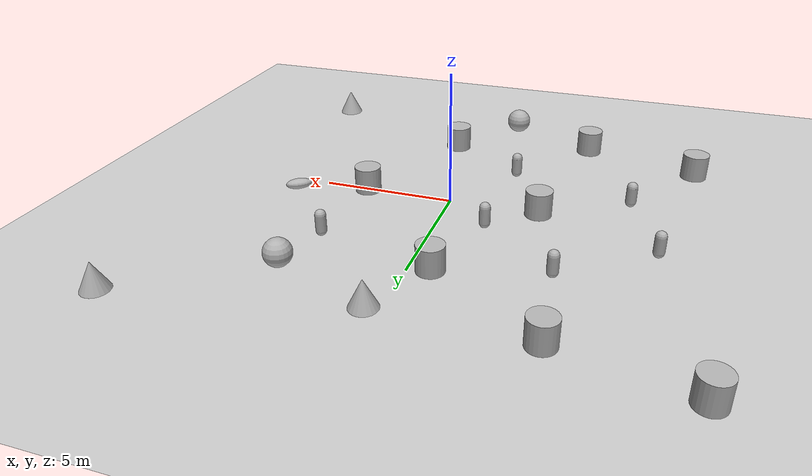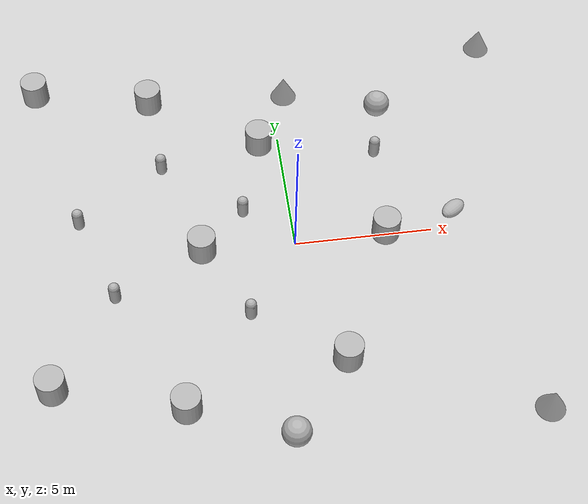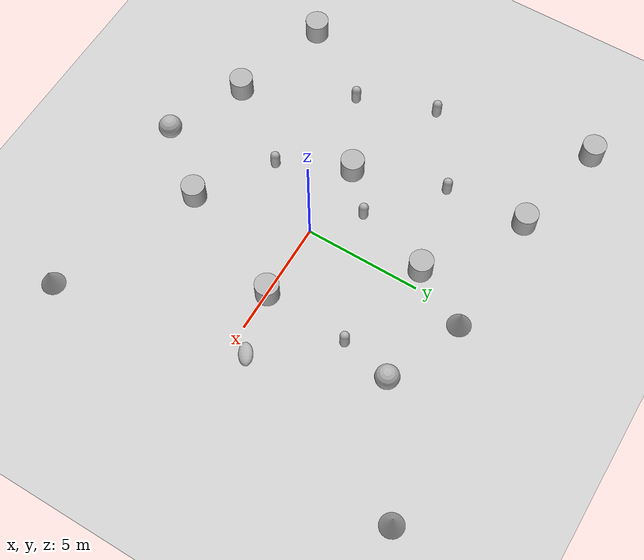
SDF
<sdf version='1.10'>
  <world name='default'>
    <physics name='sim_physics' type='ode'>
      <max_step_size>0.001</max_step_size>
      <real_time_factor>1</real_time_factor>
      <real_time_update_rate>1000</real_time_update_rate>
      <ode>
        <solver>
          <type>world</type>
          <iters>150</iters>
          <sor>1.3</sor>
          <use_dynamic_moi_rescaling>true</use_dynamic_moi_rescaling>
        </solver>
        <constraints>
          <cfm>0</cfm>
          <erp>0.20000000000000001</erp>
          <contact_max_correcting_vel>100</contact_max_correcting_vel>
          <contact_surface_layer>0.001</contact_surface_layer>
        </constraints>
      </ode>
    </physics>
    <scene>
      <ambient>0.400000006 0.400000006 0.400000006 1</ambient>
      <background>0.699999988 0.699999988 0.699999988 1</background>
      <shadows>true</shadows>
    </scene>
    <gravity>0 0 -9.8000000000000007</gravity>
    <magnetic_field>5.5644999999999998e-06 2.2875799999999999e-05 -4.2388400000000002e-05</magnetic_field>
    <atmosphere type='adiabatic'/>
    <model name='ground_plane'>
      <static>true</static>
      <link name='link'>
        <collision name='collision'>
          <geometry>
            <plane>
              <normal>0 0 1</normal>
              <size>100 100</size>
            </plane>
          </geometry>
          <surface>
            <friction>
              <ode>
                <mu>100</mu>
                <mu2>50</mu2>
              </ode>
            </friction>
            <contact>
              <ode>
                <kp>1000000</kp>
                <kd>1</kd>
              </ode>
            </contact>
            <bounce/>
          </surface>
        </collision>
        <visual name='visual'>
          <geometry>
            <plane>
              <normal>0 0 1</normal>
              <size>100 100</size>
            </plane>
          </geometry>
          <material>
            <ambient>0.800000012 0.800000012 0.800000012 1</ambient>
            <diffuse>0.800000012 0.800000012 0.800000012 1</diffuse>
            <specular>0.800000012 0.800000012 0.800000012 1</specular>
          </material>
        </visual>
        <pose>0 0 0 0 0 0</pose>
        <inertial>
          <pose>0 0 0 0 0 0</pose>
          <mass>1</mass>
          <inertia>
            <ixx>1</ixx>
            <ixy>0</ixy>
            <ixz>0</ixz>
            <iyy>1</iyy>
            <iyz>0</iyz>
            <izz>1</izz>
          </inertia>
        </inertial>
        <enable_wind>false</enable_wind>
      </link>
      <pose>0 0 0 0 0 0</pose>
      <self_collide>false</self_collide>
    </model>
    <model name='cylinder'>
      <pose>3.3054241307502163 0.043477416391058503 0.49999942638036005 4.1262285443323388e-19 -2.5661457691216245e-19 1.3792220042789841e-21</pose>
      <link name='cylinder_link'>
        <inertial>
          <inertia>
            <ixx>0.14580000000000001</ixx>
            <ixy>0</ixy>
            <ixz>0</ixz>
            <iyy>0.14580000000000001</iyy>
            <iyz>0</iyz>
            <izz>0.125</izz>
          </inertia>
          <mass>1</mass>
          <pose>0 0 0 0 0 0</pose>
        </inertial>
        <collision name='cylinder_collision'>
          <geometry>
            <cylinder>
              <radius>0.5</radius>
              <length>1</length>
            </cylinder>
          </geometry>
          <surface>
            <friction>
              <ode/>
            </friction>
            <bounce/>
            <contact/>
          </surface>
        </collision>
        <visual name='cylinder_visual'>
          <geometry>
            <cylinder>
              <radius>0.5</radius>
              <length>1</length>
            </cylinder>
          </geometry>
          <material>
            <ambient>0.300000012 0.300000012 0.300000012 1</ambient>
            <diffuse>0.699999988 0.699999988 0.699999988 1</diffuse>
            <specular>1 1 1 1</specular>
          </material>
        </visual>
        <pose>0 0 0 0 0 0</pose>
        <enable_wind>false</enable_wind>
      </link>
      <static>false</static>
      <self_collide>false</self_collide>
    </model>
    <model name='cylinder_0'>
      <pose>-3.3755703132700692 0.04078806777754438 0.49999942638036005 3.5519531972500483e-19 -3.6751912412000469e-19 1.7472083759828068e-20</pose>
      <link name='cylinder_link'>
        <inertial>
          <inertia>
            <ixx>0.14580000000000001</ixx>
            <ixy>0</ixy>
            <ixz>0</ixz>
            <iyy>0.14580000000000001</iyy>
            <iyz>0</iyz>
            <izz>0.125</izz>
          </inertia>
          <mass>1</mass>
          <pose>0 0 0 0 0 0</pose>
        </inertial>
        <collision name='cylinder_collision'>
          <geometry>
            <cylinder>
              <radius>0.5</radius>
              <length>1</length>
            </cylinder>
          </geometry>
          <surface>
            <friction>
              <ode/>
            </friction>
            <bounce/>
            <contact/>
          </surface>
        </collision>
        <visual name='cylinder_visual'>
          <geometry>
            <cylinder>
              <radius>0.5</radius>
              <length>1</length>
            </cylinder>
          </geometry>
          <material>
            <ambient>0.300000012 0.300000012 0.300000012 1</ambient>
            <diffuse>0.699999988 0.699999988 0.699999988 1</diffuse>
            <specular>1 1 1 1</specular>
          </material>
        </visual>
        <pose>0 0 0 0 0 0</pose>
        <enable_wind>false</enable_wind>
      </link>
      <static>false</static>
      <self_collide>false</self_collide>
    </model>
    <model name='cylinder_1'>
      <pose>-0.75868858733818101 4.7686502744917227 0.49999942638036005 -1.3715650340256762e-19 -1.7463411362436129e-19 -1.746022263645055e-21</pose>
      <link name='cylinder_link'>
        <inertial>
          <inertia>
            <ixx>0.14580000000000001</ixx>
            <ixy>0</ixy>
            <ixz>0</ixz>
            <iyy>0.14580000000000001</iyy>
            <iyz>0</iyz>
            <izz>0.125</izz>
          </inertia>
          <mass>1</mass>
          <pose>0 0 0 0 0 0</pose>
        </inertial>
        <collision name='cylinder_collision'>
          <geometry>
            <cylinder>
              <radius>0.5</radius>
              <length>1</length>
            </cylinder>
          </geometry>
          <surface>
            <friction>
              <ode/>
            </friction>
            <bounce/>
            <contact/>
          </surface>
        </collision>
        <visual name='cylinder_visual'>
          <geometry>
            <cylinder>
              <radius>0.5</radius>
              <length>1</length>
            </cylinder>
          </geometry>
          <material>
            <ambient>0.300000012 0.300000012 0.300000012 1</ambient>
            <diffuse>0.699999988 0.699999988 0.699999988 1</diffuse>
            <specular>1 1 1 1</specular>
          </material>
        </visual>
        <pose>0 0 0 0 0 0</pose>
        <enable_wind>false</enable_wind>
      </link>
      <static>false</static>
      <self_collide>false</self_collide>
    </model>
    <model name='cylinder_2'>
      <pose>1.0676879775667754 -4.9688163409546116 0.49999942638036005 -6.4243685146407588e-20 2.239126339818348e-19 4.7188370077248854e-21</pose>
      <link name='cylinder_link'>
        <inertial>
          <inertia>
            <ixx>0.14580000000000001</ixx>
            <ixy>0</ixy>
            <ixz>0</ixz>
            <iyy>0.14580000000000001</iyy>
            <iyz>0</iyz>
            <izz>0.125</izz>
          </inertia>
          <mass>1</mass>
          <pose>0 0 0 0 0 0</pose>
        </inertial>
        <collision name='cylinder_collision'>
          <geometry>
            <cylinder>
              <radius>0.5</radius>
              <length>1</length>
            </cylinder>
          </geometry>
          <surface>
            <friction>
              <ode/>
            </friction>
            <bounce/>
            <contact/>
          </surface>
        </collision>
        <visual name='cylinder_visual'>
          <geometry>
            <cylinder>
              <radius>0.5</radius>
              <length>1</length>
            </cylinder>
          </geometry>
          <material>
            <ambient>0.300000012 0.300000012 0.300000012 1</ambient>
            <diffuse>0.699999988 0.699999988 0.699999988 1</diffuse>
            <specular>1 1 1 1</specular>
          </material>
        </visual>
        <pose>0 0 0 0 0 0</pose>
        <enable_wind>false</enable_wind>
      </link>
      <static>false</static>
      <self_collide>false</self_collide>
    </model>
    <model name='capsule'>
      <pose>3.5494327944988093 3.7673195639465566 0.499999999902001 0 0 0</pose>
      <link name='capsule_link'>
        <inertial>
          <inertia>
            <ixx>0.074153999999999998</ixx>
            <ixy>0</ixy>
            <ixz>0</ixz>
            <iyy>0.074153999999999998</iyy>
            <iyz>0</iyz>
            <izz>0.018769000000000001</izz>
          </inertia>
          <mass>1</mass>
          <pose>0 0 0 0 0 0</pose>
        </inertial>
        <collision name='capsule_collision'>
          <geometry>
            <capsule>
              <radius>0.20000000000000001</radius>
              <length>0.59999999999999998</length>
            </capsule>
          </geometry>
          <surface>
            <friction>
              <ode/>
            </friction>
            <bounce/>
            <contact/>
          </surface>
        </collision>
        <visual name='capsule_visual'>
          <geometry>
            <capsule>
              <radius>0.20000000000000001</radius>
              <length>0.59999999999999998</length>
            </capsule>
          </geometry>
          <material>
            <ambient>0.300000012 0.300000012 0.300000012 1</ambient>
            <diffuse>0.699999988 0.699999988 0.699999988 1</diffuse>
            <specular>1 1 1 1</specular>
          </material>
        </visual>
        <pose>0 0 0 0 0 0</pose>
        <enable_wind>false</enable_wind>
      </link>
      <static>false</static>
      <self_collide>false</self_collide>
    </model>
    <model name='capsule_0'>
      <pose>-1.7328686774415232 1.5381252946917658 0.499999999902001 0 0 0</pose>
      <link name='capsule_link'>
        <inertial>
          <inertia>
            <ixx>0.074153999999999998</ixx>
            <ixy>0</ixy>
            <ixz>0</ixz>
            <iyy>0.074153999999999998</iyy>
            <iyz>0</iyz>
            <izz>0.018769000000000001</izz>
          </inertia>
          <mass>1</mass>
          <pose>0 0 0 0 0 0</pose>
        </inertial>
        <collision name='capsule_collision'>
          <geometry>
            <capsule>
              <radius>0.20000000000000001</radius>
              <length>0.59999999999999998</length>
            </capsule>
          </geometry>
          <surface>
            <friction>
              <ode/>
            </friction>
            <bounce/>
            <contact/>
          </surface>
        </collision>
        <visual name='capsule_visual'>
          <geometry>
            <capsule>
              <radius>0.20000000000000001</radius>
              <length>0.59999999999999998</length>
            </capsule>
          </geometry>
          <material>
            <ambient>0.300000012 0.300000012 0.300000012 1</ambient>
            <diffuse>0.699999988 0.699999988 0.699999988 1</diffuse>
            <specular>1 1 1 1</specular>
          </material>
        </visual>
        <pose>0 0 0 0 0 0</pose>
        <enable_wind>false</enable_wind>
      </link>
      <static>false</static>
      <self_collide>false</self_collide>
    </model>
    <model name='capsule_1'>
      <pose>-1.9563872378600475 -2.8839411133687896 0.499999999902001 0 0 0</pose>
      <link name='capsule_link'>
        <inertial>
          <inertia>
            <ixx>0.074153999999999998</ixx>
            <ixy>0</ixy>
            <ixz>0</ixz>
            <iyy>0.074153999999999998</iyy>
            <iyz>0</iyz>
            <izz>0.018769000000000001</izz>
          </inertia>
          <mass>1</mass>
          <pose>0 0 0 0 0 0</pose>
        </inertial>
        <collision name='capsule_collision'>
          <geometry>
            <capsule>
              <radius>0.20000000000000001</radius>
              <length>0.59999999999999998</length>
            </capsule>
          </geometry>
          <surface>
            <friction>
              <ode/>
            </friction>
            <bounce/>
            <contact/>
          </surface>
        </collision>
        <visual name='capsule_visual'>
          <geometry>
            <capsule>
              <radius>0.20000000000000001</radius>
              <length>0.59999999999999998</length>
            </capsule>
          </geometry>
          <material>
            <ambient>0.300000012 0.300000012 0.300000012 1</ambient>
            <diffuse>0.699999988 0.699999988 0.699999988 1</diffuse>
            <specular>1 1 1 1</specular>
          </material>
        </visual>
        <pose>0 0 0 0 0 0</pose>
        <enable_wind>false</enable_wind>
      </link>
      <static>false</static>
      <self_collide>false</self_collide>
    </model>
    <model name='sphere'>
      <pose>4.0390578974163756 5.9560535821564766 0.499999999902001 0 0 0</pose>
      <link name='sphere_link'>
        <inertial>
          <inertia>
            <ixx>0.10000000000000001</ixx>
            <ixy>0</ixy>
            <ixz>0</ixz>
            <iyy>0.10000000000000001</iyy>
            <iyz>0</iyz>
            <izz>0.10000000000000001</izz>
          </inertia>
          <mass>1</mass>
          <pose>0 0 0 0 0 0</pose>
        </inertial>
        <collision name='sphere_collision'>
          <geometry>
            <sphere>
              <radius>0.5</radius>
            </sphere>
          </geometry>
          <surface>
            <friction>
              <ode/>
            </friction>
            <bounce/>
            <contact/>
          </surface>
        </collision>
        <visual name='sphere_visual'>
          <geometry>
            <sphere>
              <radius>0.5</radius>
            </sphere>
          </geometry>
          <material>
            <ambient>0.300000012 0.300000012 0.300000012 1</ambient>
            <diffuse>0.699999988 0.699999988 0.699999988 1</diffuse>
            <specular>1 1 1 1</specular>
          </material>
        </visual>
        <pose>0 0 0 0 0 0</pose>
        <enable_wind>false</enable_wind>
      </link>
      <static>false</static>
      <self_collide>false</self_collide>
    </model>
    <model name='ellipsoid'>
      <pose>5.958588839394003 0.72623047748717851 0.18666847899453123 1.5707963183065554 -1.3774902892568108 -0.96931484860252959</pose>
      <link name='ellipsoid_link'>
        <inertial>
          <inertia>
            <ixx>0.068000000000000005</ixx>
            <ixy>0</ixy>
            <ixz>0</ixz>
            <iyy>0.058000000000000003</iyy>
            <iyz>0</iyz>
            <izz>0.025999999999999999</izz>
          </inertia>
          <mass>1</mass>
          <pose>0 0 0 0 0 0</pose>
        </inertial>
        <collision name='ellipsoid_collision'>
          <geometry>
            <ellipsoid>
              <radii>0.20000000000000001 0.29999999999999999 0.5</radii>
            </ellipsoid>
          </geometry>
          <surface>
            <friction>
              <ode/>
            </friction>
            <bounce/>
            <contact/>
          </surface>
        </collision>
        <visual name='ellipsoid_visual'>
          <geometry>
            <ellipsoid>
              <radii>0.20000000000000001 0.29999999999999999 0.5</radii>
            </ellipsoid>
          </geometry>
          <material>
            <ambient>0.300000012 0.300000012 0.300000012 1</ambient>
            <diffuse>0.699999988 0.699999988 0.699999988 1</diffuse>
            <specular>1 1 1 1</specular>
          </material>
        </visual>
        <pose>0 0 0 0 0 0</pose>
        <enable_wind>false</enable_wind>
      </link>
      <static>false</static>
      <self_collide>false</self_collide>
    </model>
    <model name='capsule_2'>
      <pose>-4.5474529115312974 3.9266357548779158 0.499999999902001 0 0 0</pose>
      <link name='capsule_link'>
        <inertial>
          <inertia>
            <ixx>0.074153999999999998</ixx>
            <ixy>0</ixy>
            <ixz>0</ixz>
            <iyy>0.074153999999999998</iyy>
            <iyz>0</iyz>
            <izz>0.018769000000000001</izz>
          </inertia>
          <mass>1</mass>
          <pose>0 0 0 0 0 0</pose>
        </inertial>
        <collision name='capsule_collision'>
          <geometry>
            <capsule>
              <radius>0.20000000000000001</radius>
              <length>0.59999999999999998</length>
            </capsule>
          </geometry>
          <surface>
            <friction>
              <ode/>
            </friction>
            <bounce/>
            <contact/>
          </surface>
        </collision>
        <visual name='capsule_visual'>
          <geometry>
            <capsule>
              <radius>0.20000000000000001</radius>
              <length>0.59999999999999998</length>
            </capsule>
          </geometry>
          <material>
            <ambient>0.300000012 0.300000012 0.300000012 1</ambient>
            <diffuse>0.699999988 0.699999988 0.699999988 1</diffuse>
            <specular>1 1 1 1</specular>
          </material>
        </visual>
        <pose>0 0 0 0 0 0</pose>
        <enable_wind>false</enable_wind>
      </link>
      <static>false</static>
      <self_collide>false</self_collide>
    </model>
    <model name='cone'>
      <pose>0.53497423170638259 7.2409155408666823 0.49999999993296756 5.2548544155140844e-17 -7.7132841038066057e-10 -1.848369177196814e-23</pose>
      <link name='cone_link'>
        <inertial>
          <inertia>
            <ixx>0.074999999999999997</ixx>
            <ixy>0</ixy>
            <ixz>0</ixz>
            <iyy>0.074999999999999997</iyy>
            <iyz>0</iyz>
            <izz>0.074999999999999997</izz>
          </inertia>
          <mass>1</mass>
          <pose>0 0 0 0 0 0</pose>
        </inertial>
        <collision name='cone_collision'>
          <geometry>
            <cone>
              <radius>0.5</radius>
              <length>1</length>
            </cone>
          </geometry>
          <surface>
            <friction>
              <ode/>
            </friction>
            <bounce/>
            <contact/>
          </surface>
        </collision>
        <visual name='cone_visual'>
          <geometry>
            <cone>
              <radius>0.5</radius>
              <length>1</length>
            </cone>
          </geometry>
          <material>
            <ambient>0.300000012 0.300000012 0.300000012 1</ambient>
            <diffuse>0.699999988 0.699999988 0.699999988 1</diffuse>
            <specular>1 1 1 1</specular>
          </material>
        </visual>
        <pose>0 0 0 0 0 0</pose>
        <enable_wind>false</enable_wind>
      </link>
      <static>false</static>
      <self_collide>false</self_collide>
    </model>
    <model name='cone_0'>
      <pose>7.3235197849398883 -7.5969464660867416 0.49999999993296756 5.2548544155140844e-17 -7.7132841038066057e-10 -1.848369177196814e-23</pose>
      <link name='cone_link'>
        <inertial>
          <inertia>
            <ixx>0.074999999999999997</ixx>
            <ixy>0</ixy>
            <ixz>0</ixz>
            <iyy>0.074999999999999997</iyy>
            <iyz>0</iyz>
            <izz>0.074999999999999997</izz>
          </inertia>
          <mass>1</mass>
          <pose>0 0 0 0 0 0</pose>
        </inertial>
        <collision name='cone_collision'>
          <geometry>
            <cone>
              <radius>0.5</radius>
              <length>1</length>
            </cone>
          </geometry>
          <surface>
            <friction>
              <ode/>
            </friction>
            <bounce/>
            <contact/>
          </surface>
        </collision>
        <visual name='cone_visual'>
          <geometry>
            <cone>
              <radius>0.5</radius>
              <length>1</length>
            </cone>
          </geometry>
          <material>
            <ambient>0.300000012 0.300000012 0.300000012 1</ambient>
            <diffuse>0.699999988 0.699999988 0.699999988 1</diffuse>
            <specular>1 1 1 1</specular>
          </material>
        </visual>
        <pose>0 0 0 0 0 0</pose>
        <enable_wind>false</enable_wind>
      </link>
      <static>false</static>
      <self_collide>false</self_collide>
    </model>
    <model name='cone_1'>
      <pose>8.7916799813517574 8.8859953919287591 0.49999999993296756 5.254931119316858e-17 -7.7132841033999823e-10 6.969765996526587e-23</pose>
      <link name='cone_link'>
        <inertial>
          <inertia>
            <ixx>0.074999999999999997</ixx>
            <ixy>0</ixy>
            <ixz>0</ixz>
            <iyy>0.074999999999999997</iyy>
            <iyz>0</iyz>
            <izz>0.074999999999999997</izz>
          </inertia>
          <mass>1</mass>
          <pose>0 0 0 0 0 0</pose>
        </inertial>
        <collision name='cone_collision'>
          <geometry>
            <cone>
              <radius>0.5</radius>
              <length>1</length>
            </cone>
          </geometry>
          <surface>
            <friction>
              <ode/>
            </friction>
            <bounce/>
            <contact/>
          </surface>
        </collision>
        <visual name='cone_visual'>
          <geometry>
            <cone>
              <radius>0.5</radius>
              <length>1</length>
            </cone>
          </geometry>
          <material>
            <ambient>0.300000012 0.300000012 0.300000012 1</ambient>
            <diffuse>0.699999988 0.699999988 0.699999988 1</diffuse>
            <specular>1 1 1 1</specular>
          </material>
        </visual>
        <pose>0 0 0 0 0 0</pose>
        <enable_wind>false</enable_wind>
      </link>
      <static>false</static>
      <self_collide>false</self_collide>
    </model>
    <model name='cylinder_3'>
      <pose>-4.8224049646347247 7.3952940584726514 0.49999942638036005 -1.9945543750434458e-19 -5.6710803264491748e-19 3.0591398850776577e-20</pose>
      <link name='cylinder_link'>
        <inertial>
          <inertia>
            <ixx>0.14580000000000001</ixx>
            <ixy>0</ixy>
            <ixz>0</ixz>
            <iyy>0.14580000000000001</iyy>
            <iyz>0</iyz>
            <izz>0.125</izz>
          </inertia>
          <mass>1</mass>
          <pose>0 0 0 0 0 0</pose>
        </inertial>
        <collision name='cylinder_collision'>
          <geometry>
            <cylinder>
              <radius>0.5</radius>
              <length>1</length>
            </cylinder>
          </geometry>
          <surface>
            <friction>
              <ode/>
            </friction>
            <bounce/>
            <contact/>
          </surface>
        </collision>
        <visual name='cylinder_visual'>
          <geometry>
            <cylinder>
              <radius>0.5</radius>
              <length>1</length>
            </cylinder>
          </geometry>
          <material>
            <ambient>0.300000012 0.300000012 0.300000012 1</ambient>
            <diffuse>0.699999988 0.699999988 0.699999988 1</diffuse>
            <specular>1 1 1 1</specular>
          </material>
        </visual>
        <pose>0 0 0 0 0 0</pose>
        <enable_wind>false</enable_wind>
      </link>
      <static>false</static>
      <self_collide>false</self_collide>
    </model>
    <model name='cylinder_4'>
      <pose>-4.4475259608033175 -6.1901208556547864 0.49999942638036005 -2.0996670157040641e-19 -3.2586016569478845e-19 -6.1134979538675135e-21</pose>
      <link name='cylinder_link'>
        <inertial>
          <inertia>
            <ixx>0.14580000000000001</ixx>
            <ixy>0</ixy>
            <ixz>0</ixz>
            <iyy>0.14580000000000001</iyy>
            <iyz>0</iyz>
            <izz>0.125</izz>
          </inertia>
          <mass>1</mass>
          <pose>0 0 0 0 0 0</pose>
        </inertial>
        <collision name='cylinder_collision'>
          <geometry>
            <cylinder>
              <radius>0.5</radius>
              <length>1</length>
            </cylinder>
          </geometry>
          <surface>
            <friction>
              <ode/>
            </friction>
            <bounce/>
            <contact/>
          </surface>
        </collision>
        <visual name='cylinder_visual'>
          <geometry>
            <cylinder>
              <radius>0.5</radius>
              <length>1</length>
            </cylinder>
          </geometry>
          <material>
            <ambient>0.300000012 0.300000012 0.300000012 1</ambient>
            <diffuse>0.699999988 0.699999988 0.699999988 1</diffuse>
            <specular>1 1 1 1</specular>
          </material>
        </visual>
        <pose>0 0 0 0 0 0</pose>
        <enable_wind>false</enable_wind>
      </link>
      <static>false</static>
      <self_collide>false</self_collide>
    </model>
    <model name='capsule_3'>
      <pose>-7.7090402851267266 1.7119971146969017 0.499999999902001 0 0 0</pose>
      <link name='capsule_link'>
        <inertial>
          <inertia>
            <ixx>0.074153999999999998</ixx>
            <ixy>0</ixy>
            <ixz>0</ixz>
            <iyy>0.074153999999999998</iyy>
            <iyz>0</iyz>
            <izz>0.018769000000000001</izz>
          </inertia>
          <mass>1</mass>
          <pose>0 0 0 0 0 0</pose>
        </inertial>
        <collision name='capsule_collision'>
          <geometry>
            <capsule>
              <radius>0.20000000000000001</radius>
              <length>0.59999999999999998</length>
            </capsule>
          </geometry>
          <surface>
            <friction>
              <ode/>
            </friction>
            <bounce/>
            <contact/>
          </surface>
        </collision>
        <visual name='capsule_visual'>
          <geometry>
            <capsule>
              <radius>0.20000000000000001</radius>
              <length>0.59999999999999998</length>
            </capsule>
          </geometry>
          <material>
            <ambient>0.300000012 0.300000012 0.300000012 1</ambient>
            <diffuse>0.699999988 0.699999988 0.699999988 1</diffuse>
            <specular>1 1 1 1</specular>
          </material>
        </visual>
        <pose>0 0 0 0 0 0</pose>
        <enable_wind>false</enable_wind>
      </link>
      <static>false</static>
      <self_collide>false</self_collide>
    </model>
    <model name='cylinder_5'>
      <pose>-9.2313804520919369 8.3635850195794195 0.49999942638036005 1.5441689325479654e-19 3.3018878921726261e-19 -8.627297386163477e-21</pose>
      <link name='cylinder_link'>
        <inertial>
          <inertia>
            <ixx>0.14580000000000001</ixx>
            <ixy>0</ixy>
            <ixz>0</ixz>
            <iyy>0.14580000000000001</iyy>
            <iyz>0</iyz>
            <izz>0.125</izz>
          </inertia>
          <mass>1</mass>
          <pose>0 0 0 0 0 0</pose>
        </inertial>
        <collision name='cylinder_collision'>
          <geometry>
            <cylinder>
              <radius>0.5</radius>
              <length>1</length>
            </cylinder>
          </geometry>
          <surface>
            <friction>
              <ode/>
            </friction>
            <bounce/>
            <contact/>
          </surface>
        </collision>
        <visual name='cylinder_visual'>
          <geometry>
            <cylinder>
              <radius>0.5</radius>
              <length>1</length>
            </cylinder>
          </geometry>
          <material>
            <ambient>0.300000012 0.300000012 0.300000012 1</ambient>
            <diffuse>0.699999988 0.699999988 0.699999988 1</diffuse>
            <specular>1 1 1 1</specular>
          </material>
        </visual>
        <pose>0 0 0 0 0 0</pose>
        <enable_wind>false</enable_wind>
      </link>
      <static>false</static>
      <self_collide>false</self_collide>
    </model>
    <model name='cylinder_6'>
      <pose>-8.7784591240114143 -4.9768766419000725 0.49999942638036005 -1.1957274550866602e-19 2.1817599206210081e-19 -2.9473679563631457e-21</pose>
      <link name='cylinder_link'>
        <inertial>
          <inertia>
            <ixx>0.14580000000000001</ixx>
            <ixy>0</ixy>
            <ixz>0</ixz>
            <iyy>0.14580000000000001</iyy>
            <iyz>0</iyz>
            <izz>0.125</izz>
          </inertia>
          <mass>1</mass>
          <pose>0 0 0 0 0 0</pose>
        </inertial>
        <collision name='cylinder_collision'>
          <geometry>
            <cylinder>
              <radius>0.5</radius>
              <length>1</length>
            </cylinder>
          </geometry>
          <surface>
            <friction>
              <ode/>
            </friction>
            <bounce/>
            <contact/>
          </surface>
        </collision>
        <visual name='cylinder_visual'>
          <geometry>
            <cylinder>
              <radius>0.5</radius>
              <length>1</length>
            </cylinder>
          </geometry>
          <material>
            <ambient>0.300000012 0.300000012 0.300000012 1</ambient>
            <diffuse>0.699999988 0.699999988 0.699999988 1</diffuse>
            <specular>1 1 1 1</specular>
          </material>
        </visual>
        <pose>0 0 0 0 0 0</pose>
        <enable_wind>false</enable_wind>
      </link>
      <static>false</static>
      <self_collide>false</self_collide>
    </model>
    <model name='capsule_4'>
      <pose>-6.550718335751875 -1.6346802365854369 0.499999999902001 0 0 0</pose>
      <link name='capsule_link'>
        <inertial>
          <inertia>
            <ixx>0.074153999999999998</ixx>
            <ixy>0</ixy>
            <ixz>0</ixz>
            <iyy>0.074153999999999998</iyy>
            <iyz>0</iyz>
            <izz>0.018769000000000001</izz>
          </inertia>
          <mass>1</mass>
          <pose>0 0 0 0 0 0</pose>
        </inertial>
        <collision name='capsule_collision'>
          <geometry>
            <capsule>
              <radius>0.20000000000000001</radius>
              <length>0.59999999999999998</length>
            </capsule>
          </geometry>
          <surface>
            <friction>
              <ode/>
            </friction>
            <bounce/>
            <contact/>
          </surface>
        </collision>
        <visual name='capsule_visual'>
          <geometry>
            <capsule>
              <radius>0.20000000000000001</radius>
              <length>0.59999999999999998</length>
            </capsule>
          </geometry>
          <material>
            <ambient>0.300000012 0.300000012 0.300000012 1</ambient>
            <diffuse>0.699999988 0.699999988 0.699999988 1</diffuse>
            <specular>1 1 1 1</specular>
          </material>
        </visual>
        <pose>0 0 0 0 0 0</pose>
        <enable_wind>false</enable_wind>
      </link>
      <static>false</static>
      <self_collide>false</self_collide>
    </model>
    <model name='sphere_0'>
      <pose>-1.0543108889655457 -7.6145221667207661 0.499999999902001 0 0 0</pose>
      <link name='sphere_link'>
        <inertial>
          <inertia>
            <ixx>0.10000000000000001</ixx>
            <ixy>0</ixy>
            <ixz>0</ixz>
            <iyy>0.10000000000000001</iyy>
            <iyz>0</iyz>
            <izz>0.10000000000000001</izz>
          </inertia>
          <mass>1</mass>
          <pose>0 0 0 0 0 0</pose>
        </inertial>
        <collision name='sphere_collision'>
          <geometry>
            <sphere>
              <radius>0.5</radius>
            </sphere>
          </geometry>
          <surface>
            <friction>
              <ode/>
            </friction>
            <bounce/>
            <contact/>
          </surface>
        </collision>
        <visual name='sphere_visual'>
          <geometry>
            <sphere>
              <radius>0.5</radius>
            </sphere>
          </geometry>
          <material>
            <ambient>0.300000012 0.300000012 0.300000012 1</ambient>
            <diffuse>0.699999988 0.699999988 0.699999988 1</diffuse>
            <specular>1 1 1 1</specular>
          </material>
        </visual>
        <pose>0 0 0 0 0 0</pose>
        <enable_wind>false</enable_wind>
      </link>
      <static>false</static>
      <self_collide>false</self_collide>
    </model>
    <light name='sun' type='directional'>
      <pose>0 0 10 0 0 0</pose>
      <cast_shadows>true</cast_shadows>
      <intensity>1</intensity>
      <direction>-0.5 0.10000000000000001 -0.90000000000000002</direction>
      <diffuse>0.800000012 0.800000012 0.800000012 1</diffuse>
      <specular>0.300000012 0.300000012 0.300000012 1</specular>
      <attenuation>
        <range>1000</range>
        <linear>0.01</linear>
        <constant>0.90000000000000002</constant>
        <quadratic>0.001</quadratic>
      </attenuation>
      <spot>
        <inner_angle>0</inner_angle>
        <outer_angle>0</outer_angle>
        <falloff>0</falloff>
      </spot>
    </light>
  </world>
</sdf>
